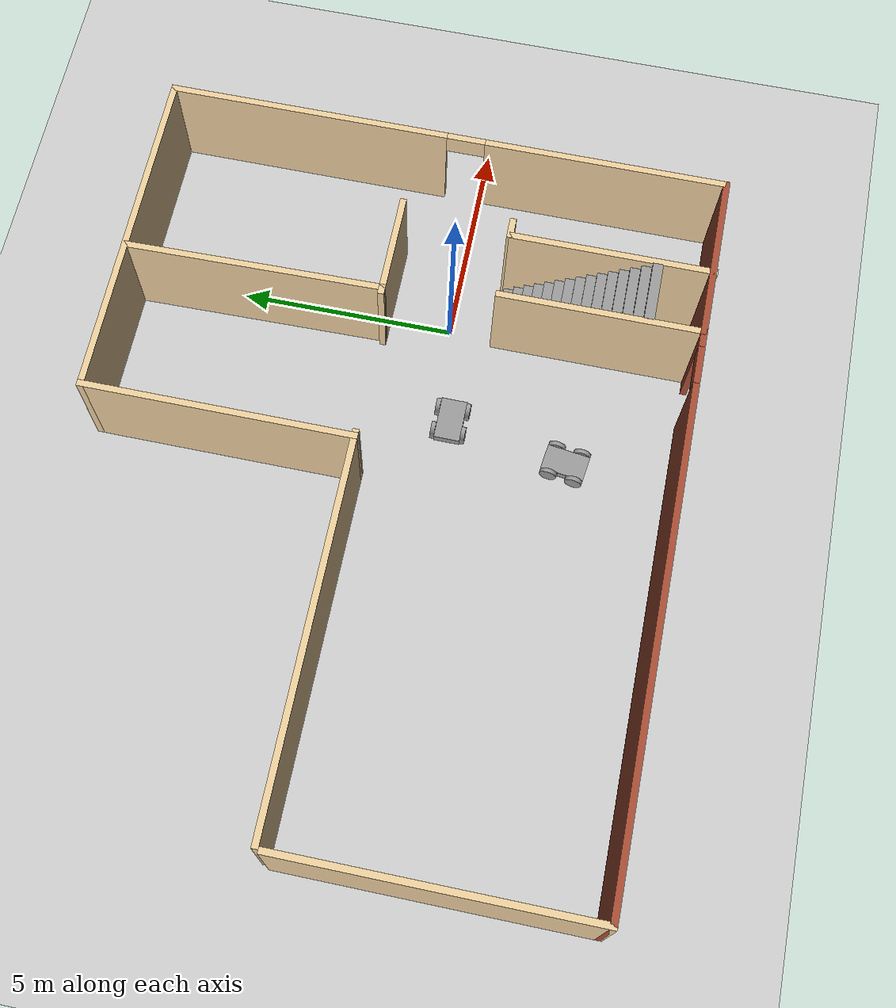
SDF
<sdf version="1.6">
 <world name="default">
  <plugin name="hello" filename="libhello.so"/>
  <light name="sun" type="directional">
   <pose>0 0 10 0 -0 0</pose>
   <diffuse>0.8 0.8 0.8 1</diffuse>
   <specular>0.2 0.2 0.2 1</specular>
   <attenuation>
    <range>1000</range>
    <constant>0.9</constant>
    <linear>0.01</linear>
    <quadratic>0.001</quadratic>
   </attenuation>
   <direction>-0.5 0.1 -0.9</direction>
  </light>
  <model name="ground_plane">
   <static>1</static>
   <link name="link">
    <collision name="collision">
     <geometry><plane><normal>0 0 1</normal><size>100 100</size></plane></geometry>
     <surface>
      <contact><collide_bitmask>65535</collide_bitmask></contact>
      <friction><ode><mu>100</mu><mu2>50</mu2></ode></friction>
     </surface>
    </collision>
    <visual name="visual">
     <cast_shadows>0</cast_shadows>
     <geometry><plane><normal>0 0 1</normal><size>100 100</size></plane></geometry>
     <material>
      <script><uri>file://media/materials/scripts/gazebo.material</uri><name>Gazebo/Grey</name></script>
     </material>
    </visual>
   </link>
  </model>
  <gravity>0 0 -9.8</gravity>
  <magnetic_field>6e-06 2.3e-05 -4.2e-05</magnetic_field>
  <atmosphere type="adiabatic"/>
  <physics name="default_physics" default="0" type="ode">
   <max_step_size>0.001</max_step_size>
   <real_time_factor>1</real_time_factor>
   <real_time_update_rate>1000</real_time_update_rate>
  </physics>
  <scene><ambient>0.4 0.4 0.4 1</ambient><background>0.7 0.7 0.7 1</background><shadows>1</shadows></scene>
  <spherical_coordinates>
   <surface_model>EARTH_WGS84</surface_model>
   <latitude_deg>0</latitude_deg>
   <longitude_deg>0</longitude_deg>
   <elevation>0</elevation>
   <heading_deg>0</heading_deg>
  </spherical_coordinates>
  <model name="robot_1">
   <link name="link_0">
    <light name="spot" type="spot">
     <pose>0.4 0 -0.3 0 -1.5707 0</pose>
     <diffuse>1 1 1 0.5</diffuse>
     <specular>0.1 0.1 0.1 1</specular>
     <attenuation>
      <range>10</range>
      <linear>0.5</linear>
      <constant>0.8</constant>
      <quadratic>0.01</quadratic>
     </attenuation>
     <direction>0 0 -1</direction>
    </light>
    <pose>-0.396955 -1.04287 0.74 0 -0 0</pose>
    <inertial>
     <mass>1</mass>
     <inertia>
      <ixx>0.166667</ixx>
      <ixy>0</ixy>
      <ixz>0</ixz>
      <iyy>0.166667</iyy>
      <iyz>0</iyz>
      <izz>0.166667</izz>
     </inertia>
    </inertial>
    <visual name="visual">
     <pose>0 0 -0.3 0 -0 0</pose>
     <geometry><box><size>1 0.6 0.2</size></box></geometry>
     <material>
      <lighting>1</lighting>
      <script><uri>file://media/materials/scripts/gazebo.material</uri><name>Gazebo/Grey</name></script>
      <shader type="pixel"><normal_map>__default__</normal_map></shader>
      <ambient>0.3 0.3 0.3 1</ambient>
      <diffuse>0.7 0.7 0.7 1</diffuse>
      <specular>0.01 0.01 0.01 1</specular>
      <emissive>0 0 0 1</emissive>
     </material>
    </visual>
    <collision name="collision">
     <pose>0 0 -0.3 0 -0 0</pose>
     <geometry><box><size>1 0.6 0.2</size></box></geometry>
     <surface>
      <friction>
       <ode><mu>1</mu><mu2>1</mu2><fdir1>0 0 0</fdir1><slip1>0</slip1><slip2>0</slip2></ode>
       <torsional>
        <coefficient>1</coefficient>
        <patch_radius>0</patch_radius>
        <surface_radius>0</surface_radius>
        <use_patch_radius>1</use_patch_radius>
        <ode><slip>0</slip></ode>
       </torsional>
      </friction>
      <bounce><restitution_coefficient>0</restitution_coefficient><threshold>1e+06</threshold></bounce>
      <contact>
       <collide_without_contact>0</collide_without_contact>
       <collide_without_contact_bitmask>1</collide_without_contact_bitmask>
       <collide_bitmask>1</collide_bitmask>
       <ode>
        <soft_cfm>0</soft_cfm>
        <soft_erp>0.2</soft_erp>
        <kp>1e+13</kp>
        <kd>1</kd>
        <max_vel>0.01</max_vel>
        <min_depth>0</min_depth>
       </ode>
       <bullet>
        <split_impulse>1</split_impulse>
        <split_impulse_penetration_threshold>-0.01</split_impulse_penetration_threshold>
        <soft_cfm>0</soft_cfm>
        <soft_erp>0.2</soft_erp>
        <kp>1e+13</kp>
        <kd>1</kd>
       </bullet>
      </contact>
     </surface>
    </collision>
   </link>
   <link name="link_1">
    <pose>-0.696955 -1.39289 0.44 1.5707 -0 0</pose>
    <inertial>
     <mass>0.1</mass>
     <inertia><ixx>0.145833</ixx><ixy>0</ixy><ixz>0</ixz><iyy>0.145833</iyy><iyz>0</iyz><izz>0.125</izz></inertia>
    </inertial>
    <visual name="visual">
     <geometry><cylinder><radius>0.2</radius><length>0.1</length></cylinder></geometry>
     <material>
      <lighting>1</lighting>
      <script><uri>file://media/materials/scripts/gazebo.material</uri><name>Gazebo/Grey</name></script>
      <shader type="pixel"><normal_map>__default__</normal_map></shader>
      <ambient>0.3 0.3 0.3 1</ambient>
      <diffuse>0.7 0.7 0.7 1</diffuse>
      <specular>0.01 0.01 0.01 1</specular>
      <emissive>0 0 0 1</emissive>
     </material>
    </visual>
    <collision name="collision">
     <geometry><cylinder><radius>0.2</radius><length>0.1</length></cylinder></geometry>
     <surface>
      <friction>
       <ode><mu>1</mu><mu2>1</mu2><fdir1>0 0 0</fdir1><slip1>0</slip1><slip2>0</slip2></ode>
       <torsional>
        <coefficient>1</coefficient>
        <patch_radius>0</patch_radius>
        <surface_radius>0</surface_radius>
        <use_patch_radius>1</use_patch_radius>
        <ode><slip>0</slip></ode>
       </torsional>
      </friction>
      <bounce><restitution_coefficient>0</restitution_coefficient><threshold>1e+06</threshold></bounce>
      <contact>
       <collide_without_contact>0</collide_without_contact>
       <collide_without_contact_bitmask>1</collide_without_contact_bitmask>
       <collide_bitmask>1</collide_bitmask>
       <ode>
        <soft_cfm>0</soft_cfm>
        <soft_erp>0.2</soft_erp>
        <kp>1e+13</kp>
        <kd>1</kd>
        <max_vel>0.01</max_vel>
        <min_depth>0</min_depth>
       </ode>
       <bullet>
        <split_impulse>1</split_impulse>
        <split_impulse_penetration_threshold>-0.01</split_impulse_penetration_threshold>
        <soft_cfm>0</soft_cfm>
        <soft_erp>0.2</soft_erp>
        <kp>1e+13</kp>
        <kd>1</kd>
       </bullet>
      </contact>
     </surface>
    </collision>
   </link>
   <link name="link_1_clone">
    <pose>-0.096955 -1.39289 0.44 1.5707 -0 0</pose>
    <inertial>
     <mass>0.1</mass>
     <inertia><ixx>0.145833</ixx><ixy>0</ixy><ixz>0</ixz><iyy>0.145833</iyy><iyz>0</iyz><izz>0.125</izz></inertia>
    </inertial>
    <visual name="visual">
     <geometry><cylinder><radius>0.2</radius><length>0.1</length></cylinder></geometry>
     <material>
      <lighting>1</lighting>
      <script><uri>file://media/materials/scripts/gazebo.material</uri><name>Gazebo/Grey</name></script>
      <shader type="pixel"><normal_map>__default__</normal_map></shader>
      <ambient>0.3 0.3 0.3 1</ambient>
      <diffuse>0.7 0.7 0.7 1</diffuse>
      <specular>0.01 0.01 0.01 1</specular>
      <emissive>0 0 0 1</emissive>
     </material>
    </visual>
    <collision name="collision">
     <geometry><cylinder><radius>0.2</radius><length>0.1</length></cylinder></geometry>
     <surface>
      <friction>
       <ode><mu>1</mu><mu2>1</mu2><fdir1>0 0 0</fdir1><slip1>0</slip1><slip2>0</slip2></ode>
       <torsional>
        <coefficient>1</coefficient>
        <patch_radius>0</patch_radius>
        <surface_radius>0</surface_radius>
        <use_patch_radius>1</use_patch_radius>
        <ode><slip>0</slip></ode>
       </torsional>
      </friction>
      <bounce><restitution_coefficient>0</restitution_coefficient><threshold>1e+06</threshold></bounce>
      <contact>
       <collide_without_contact>0</collide_without_contact>
       <collide_without_contact_bitmask>1</collide_without_contact_bitmask>
       <collide_bitmask>1</collide_bitmask>
       <ode>
        <soft_cfm>0</soft_cfm>
        <soft_erp>0.2</soft_erp>
        <kp>1e+13</kp>
        <kd>1</kd>
        <max_vel>0.01</max_vel>
        <min_depth>0</min_depth>
       </ode>
       <bullet>
        <split_impulse>1</split_impulse>
        <split_impulse_penetration_threshold>-0.01</split_impulse_penetration_threshold>
        <soft_cfm>0</soft_cfm>
        <soft_erp>0.2</soft_erp>
        <kp>1e+13</kp>
        <kd>1</kd>
       </bullet>
      </contact>
     </surface>
    </collision>
   </link>
   <link name="link_1_clone_0">
    <pose>-0.096955 -0.692851 0.44 1.5707 -0 0</pose>
    <inertial>
     <mass>0.1</mass>
     <inertia><ixx>0.145833</ixx><ixy>0</ixy><ixz>0</ixz><iyy>0.145833</iyy><iyz>0</iyz><izz>0.125</izz></inertia>
    </inertial>
    <visual name="visual">
     <geometry><cylinder><radius>0.2</radius><length>0.1</length></cylinder></geometry>
     <material>
      <lighting>1</lighting>
      <script><uri>file://media/materials/scripts/gazebo.material</uri><name>Gazebo/Grey</name></script>
      <shader type="pixel"><normal_map>__default__</normal_map></shader>
      <ambient>0.3 0.3 0.3 1</ambient>
      <diffuse>0.7 0.7 0.7 1</diffuse>
      <specular>0.01 0.01 0.01 1</specular>
      <emissive>0 0 0 1</emissive>
     </material>
    </visual>
    <collision name="collision">
     <geometry><cylinder><radius>0.2</radius><length>0.1</length></cylinder></geometry>
     <surface>
      <friction>
       <ode><mu>1</mu><mu2>1</mu2><fdir1>0 0 0</fdir1><slip1>0</slip1><slip2>0</slip2></ode>
       <torsional>
        <coefficient>1</coefficient>
        <patch_radius>0</patch_radius>
        <surface_radius>0</surface_radius>
        <use_patch_radius>1</use_patch_radius>
        <ode><slip>0</slip></ode>
       </torsional>
      </friction>
      <bounce><restitution_coefficient>0</restitution_coefficient><threshold>1e+06</threshold></bounce>
      <contact>
       <collide_without_contact>0</collide_without_contact>
       <collide_without_contact_bitmask>1</collide_without_contact_bitmask>
       <collide_bitmask>1</collide_bitmask>
       <ode>
        <soft_cfm>0</soft_cfm>
        <soft_erp>0.2</soft_erp>
        <kp>1e+13</kp>
        <kd>1</kd>
        <max_vel>0.01</max_vel>
        <min_depth>0</min_depth>
       </ode>
       <bullet>
        <split_impulse>1</split_impulse>
        <split_impulse_penetration_threshold>-0.01</split_impulse_penetration_threshold>
        <soft_cfm>0</soft_cfm>
        <soft_erp>0.2</soft_erp>
        <kp>1e+13</kp>
        <kd>1</kd>
       </bullet>
      </contact>
     </surface>
    </collision>
   </link>
   <link name="link_1_clone_1">
    <pose>-0.696955 -0.692851 0.44 1.5707 -0 0</pose>
    <inertial>
     <mass>0.1</mass>
     <inertia><ixx>0.145833</ixx><ixy>0</ixy><ixz>0</ixz><iyy>0.145833</iyy><iyz>0</iyz><izz>0.125</izz></inertia>
    </inertial>
    <visual name="visual">
     <geometry><cylinder><radius>0.2</radius><length>0.1</length></cylinder></geometry>
     <material>
      <lighting>1</lighting>
      <script><uri>file://media/materials/scripts/gazebo.material</uri><name>Gazebo/Grey</name></script>
      <shader type="pixel"><normal_map>__default__</normal_map></shader>
      <ambient>0.3 0.3 0.3 1</ambient>
      <diffuse>0.7 0.7 0.7 1</diffuse>
      <specular>0.01 0.01 0.01 1</specular>
      <emissive>0 0 0 1</emissive>
     </material>
    </visual>
    <collision name="collision">
     <geometry><cylinder><radius>0.2</radius><length>0.1</length></cylinder></geometry>
     <surface>
      <friction>
       <ode><mu>1</mu><mu2>1</mu2><fdir1>0 0 0</fdir1><slip1>0</slip1><slip2>0</slip2></ode>
       <torsional>
        <coefficient>1</coefficient>
        <patch_radius>0</patch_radius>
        <surface_radius>0</surface_radius>
        <use_patch_radius>1</use_patch_radius>
        <ode><slip>0</slip></ode>
       </torsional>
      </friction>
      <bounce><restitution_coefficient>0</restitution_coefficient><threshold>1e+06</threshold></bounce>
      <contact>
       <collide_without_contact>0</collide_without_contact>
       <collide_without_contact_bitmask>1</collide_without_contact_bitmask>
       <collide_bitmask>1</collide_bitmask>
       <ode>
        <soft_cfm>0</soft_cfm>
        <soft_erp>0.2</soft_erp>
        <kp>1e+13</kp>
        <kd>1</kd>
        <max_vel>0.01</max_vel>
        <min_depth>0</min_depth>
       </ode>
       <bullet>
        <split_impulse>1</split_impulse>
        <split_impulse_penetration_threshold>-0.01</split_impulse_penetration_threshold>
        <soft_cfm>0</soft_cfm>
        <soft_erp>0.2</soft_erp>
        <kp>1e+13</kp>
        <kd>1</kd>
       </bullet>
      </contact>
     </surface>
    </collision>
   </link>
   <joint name="link_0_JOINT_0" type="revolute">
    <parent>link_0</parent>
    <child>link_1</child>
    <axis>
     <xyz>0 0 1</xyz>
     <use_parent_model_frame>0</use_parent_model_frame>
     <limit>
      <lower>-1.79769e+308</lower>
      <upper>1.79769e+308</upper>
      <effort>-1</effort>
      <velocity>-1</velocity>
     </limit>
     <dynamics>
      <spring_reference>0</spring_reference>
      <spring_stiffness>0</spring_stiffness>
      <damping>0</damping>
     </dynamics>
    </axis>
    <physics>
     <ode><limit><cfm>0</cfm><erp>0.2</erp></limit><suspension><cfm>0</cfm><erp>0.2</erp></suspension></ode>
    </physics>
   </joint>
   <joint name="link_0_JOINT_1" type="revolute">
    <parent>link_0</parent>
    <child>link_1_clone</child>
    <axis>
     <xyz>0 0 1</xyz>
     <use_parent_model_frame>0</use_parent_model_frame>
     <limit>
      <lower>-1.79769e+308</lower>
      <upper>1.79769e+308</upper>
      <effort>-1</effort>
      <velocity>-1</velocity>
     </limit>
     <dynamics>
      <spring_reference>0</spring_reference>
      <spring_stiffness>0</spring_stiffness>
      <damping>0</damping>
     </dynamics>
    </axis>
    <physics>
     <ode><limit><cfm>0</cfm><erp>0.2</erp></limit><suspension><cfm>0</cfm><erp>0.2</erp></suspension></ode>
    </physics>
   </joint>
   <joint name="link_0_JOINT_2" type="revolute">
    <parent>link_0</parent>
    <child>link_1_clone_1</child>
    <axis>
     <xyz>0 0 1</xyz>
     <use_parent_model_frame>0</use_parent_model_frame>
     <limit>
      <lower>-1.79769e+308</lower>
      <upper>1.79769e+308</upper>
      <effort>-1</effort>
      <velocity>-1</velocity>
     </limit>
     <dynamics>
      <spring_reference>0</spring_reference>
      <spring_stiffness>0</spring_stiffness>
      <damping>0</damping>
     </dynamics>
    </axis>
    <physics>
     <ode><limit><cfm>0</cfm><erp>0.2</erp></limit><suspension><cfm>0</cfm><erp>0.2</erp></suspension></ode>
    </physics>
   </joint>
   <joint name="link_0_JOINT_3" type="revolute">
    <parent>link_0</parent>
    <child>link_1_clone_0</child>
    <axis>
     <xyz>0 0 1</xyz>
     <use_parent_model_frame>0</use_parent_model_frame>
     <limit>
      <lower>-1.79769e+308</lower>
      <upper>1.79769e+308</upper>
      <effort>-1</effort>
      <velocity>-1</velocity>
     </limit>
     <dynamics>
      <spring_reference>0</spring_reference>
      <spring_stiffness>0</spring_stiffness>
      <damping>0</damping>
     </dynamics>
    </axis>
    <physics>
     <ode><limit><cfm>0</cfm><erp>0.2</erp></limit><suspension><cfm>0</cfm><erp>0.2</erp></suspension></ode>
    </physics>
   </joint>
   <static>0</static>
   <pose>-1.91993 0.576379 -0.239994 1e-06 -1e-06 -0.002204</pose>
  </model>
  <model name="robot_2">
   <link name="link_0">
    <light name="spot" type="spot">
     <pose>0.4 0 -0.3 0 -1.5707 0</pose>
     <diffuse>1 1 1 0.5</diffuse>
     <specular>0.1 0.1 0.1 1</specular>
     <attenuation>
      <range>10</range>
      <linear>0.5</linear>
      <constant>0.8</constant>
      <quadratic>0.01</quadratic>
     </attenuation>
     <direction>0 0 -1</direction>
    </light>
    <pose>-0.396955 -1.04287 0.74 0 -0 0</pose>
    <inertial>
     <mass>1</mass>
     <inertia>
      <ixx>0.166667</ixx>
      <ixy>0</ixy>
      <ixz>0</ixz>
      <iyy>0.166667</iyy>
      <iyz>0</iyz>
      <izz>0.166667</izz>
     </inertia>
    </inertial>
    <visual name="visual">
     <pose>0 0 -0.3 0 -0 0</pose>
     <geometry><box><size>1 0.6 0.2</size></box></geometry>
     <material>
      <lighting>1</lighting>
      <script><uri>file://media/materials/scripts/gazebo.material</uri><name>Gazebo/Grey</name></script>
      <shader type="pixel"><normal_map>__default__</normal_map></shader>
      <ambient>0.3 0.3 0.3 1</ambient>
      <diffuse>0.7 0.7 0.7 1</diffuse>
      <specular>0.01 0.01 0.01 1</specular>
      <emissive>0 0 0 1</emissive>
     </material>
    </visual>
    <collision name="collision">
     <pose>0 0 -0.3 0 -0 0</pose>
     <geometry><box><size>1 0.6 0.2</size></box></geometry>
     <surface>
      <friction>
       <ode><mu>1</mu><mu2>1</mu2><fdir1>0 0 0</fdir1><slip1>0</slip1><slip2>0</slip2></ode>
       <torsional>
        <coefficient>1</coefficient>
        <patch_radius>0</patch_radius>
        <surface_radius>0</surface_radius>
        <use_patch_radius>1</use_patch_radius>
        <ode><slip>0</slip></ode>
       </torsional>
      </friction>
      <bounce><restitution_coefficient>0</restitution_coefficient><threshold>1e+06</threshold></bounce>
      <contact>
       <collide_without_contact>0</collide_without_contact>
       <collide_without_contact_bitmask>1</collide_without_contact_bitmask>
       <collide_bitmask>1</collide_bitmask>
       <ode>
        <soft_cfm>0</soft_cfm>
        <soft_erp>0.2</soft_erp>
        <kp>1e+13</kp>
        <kd>1</kd>
        <max_vel>0.01</max_vel>
        <min_depth>0</min_depth>
       </ode>
       <bullet>
        <split_impulse>1</split_impulse>
        <split_impulse_penetration_threshold>-0.01</split_impulse_penetration_threshold>
        <soft_cfm>0</soft_cfm>
        <soft_erp>0.2</soft_erp>
        <kp>1e+13</kp>
        <kd>1</kd>
       </bullet>
      </contact>
     </surface>
    </collision>
   </link>
   <link name="link_1">
    <pose>-0.696955 -1.39289 0.44 1.5707 -0 0</pose>
    <inertial>
     <mass>0.1</mass>
     <inertia><ixx>0.145833</ixx><ixy>0</ixy><ixz>0</ixz><iyy>0.145833</iyy><iyz>0</iyz><izz>0.125</izz></inertia>
    </inertial>
    <visual name="visual">
     <geometry><cylinder><radius>0.2</radius><length>0.1</length></cylinder></geometry>
     <material>
      <lighting>1</lighting>
      <script><uri>file://media/materials/scripts/gazebo.material</uri><name>Gazebo/Grey</name></script>
      <shader type="pixel"><normal_map>__default__</normal_map></shader>
      <ambient>0.3 0.3 0.3 1</ambient>
      <diffuse>0.7 0.7 0.7 1</diffuse>
      <specular>0.01 0.01 0.01 1</specular>
      <emissive>0 0 0 1</emissive>
     </material>
    </visual>
    <collision name="collision">
     <geometry><cylinder><radius>0.2</radius><length>0.1</length></cylinder></geometry>
     <surface>
      <friction>
       <ode><mu>1</mu><mu2>1</mu2><fdir1>0 0 0</fdir1><slip1>0</slip1><slip2>0</slip2></ode>
       <torsional>
        <coefficient>1</coefficient>
        <patch_radius>0</patch_radius>
        <surface_radius>0</surface_radius>
        <use_patch_radius>1</use_patch_radius>
        <ode><slip>0</slip></ode>
       </torsional>
      </friction>
      <bounce><restitution_coefficient>0</restitution_coefficient><threshold>1e+06</threshold></bounce>
      <contact>
       <collide_without_contact>0</collide_without_contact>
       <collide_without_contact_bitmask>1</collide_without_contact_bitmask>
       <collide_bitmask>1</collide_bitmask>
       <ode>
        <soft_cfm>0</soft_cfm>
        <soft_erp>0.2</soft_erp>
        <kp>1e+13</kp>
        <kd>1</kd>
        <max_vel>0.01</max_vel>
        <min_depth>0</min_depth>
       </ode>
       <bullet>
        <split_impulse>1</split_impulse>
        <split_impulse_penetration_threshold>-0.01</split_impulse_penetration_threshold>
        <soft_cfm>0</soft_cfm>
        <soft_erp>0.2</soft_erp>
        <kp>1e+13</kp>
        <kd>1</kd>
       </bullet>
      </contact>
     </surface>
    </collision>
   </link>
   <link name="link_1_clone">
    <pose>-0.096955 -1.39289 0.44 1.5707 -0 0</pose>
    <inertial>
     <mass>0.1</mass>
     <inertia><ixx>0.145833</ixx><ixy>0</ixy><ixz>0</ixz><iyy>0.145833</iyy><iyz>0</iyz><izz>0.125</izz></inertia>
    </inertial>
    <visual name="visual">
     <geometry><cylinder><radius>0.2</radius><length>0.1</length></cylinder></geometry>
     <material>
      <lighting>1</lighting>
      <script><uri>file://media/materials/scripts/gazebo.material</uri><name>Gazebo/Grey</name></script>
      <shader type="pixel"><normal_map>__default__</normal_map></shader>
      <ambient>0.3 0.3 0.3 1</ambient>
      <diffuse>0.7 0.7 0.7 1</diffuse>
      <specular>0.01 0.01 0.01 1</specular>
      <emissive>0 0 0 1</emissive>
     </material>
    </visual>
    <collision name="collision">
     <geometry><cylinder><radius>0.2</radius><length>0.1</length></cylinder></geometry>
     <surface>
      <friction>
       <ode><mu>1</mu><mu2>1</mu2><fdir1>0 0 0</fdir1><slip1>0</slip1><slip2>0</slip2></ode>
       <torsional>
        <coefficient>1</coefficient>
        <patch_radius>0</patch_radius>
        <surface_radius>0</surface_radius>
        <use_patch_radius>1</use_patch_radius>
        <ode><slip>0</slip></ode>
       </torsional>
      </friction>
      <bounce><restitution_coefficient>0</restitution_coefficient><threshold>1e+06</threshold></bounce>
      <contact>
       <collide_without_contact>0</collide_without_contact>
       <collide_without_contact_bitmask>1</collide_without_contact_bitmask>
       <collide_bitmask>1</collide_bitmask>
       <ode>
        <soft_cfm>0</soft_cfm>
        <soft_erp>0.2</soft_erp>
        <kp>1e+13</kp>
        <kd>1</kd>
        <max_vel>0.01</max_vel>
        <min_depth>0</min_depth>
       </ode>
       <bullet>
        <split_impulse>1</split_impulse>
        <split_impulse_penetration_threshold>-0.01</split_impulse_penetration_threshold>
        <soft_cfm>0</soft_cfm>
        <soft_erp>0.2</soft_erp>
        <kp>1e+13</kp>
        <kd>1</kd>
       </bullet>
      </contact>
     </surface>
    </collision>
   </link>
   <link name="link_1_clone_0">
    <pose>-0.096955 -0.692851 0.44 1.5707 -0 0</pose>
    <inertial>
     <mass>0.1</mass>
     <inertia><ixx>0.145833</ixx><ixy>0</ixy><ixz>0</ixz><iyy>0.145833</iyy><iyz>0</iyz><izz>0.125</izz></inertia>
    </inertial>
    <visual name="visual">
     <geometry><cylinder><radius>0.2</radius><length>0.1</length></cylinder></geometry>
     <material>
      <lighting>1</lighting>
      <script><uri>file://media/materials/scripts/gazebo.material</uri><name>Gazebo/Grey</name></script>
      <shader type="pixel"><normal_map>__default__</normal_map></shader>
      <ambient>0.3 0.3 0.3 1</ambient>
      <diffuse>0.7 0.7 0.7 1</diffuse>
      <specular>0.01 0.01 0.01 1</specular>
      <emissive>0 0 0 1</emissive>
     </material>
    </visual>
    <collision name="collision">
     <geometry><cylinder><radius>0.2</radius><length>0.1</length></cylinder></geometry>
     <surface>
      <friction>
       <ode><mu>1</mu><mu2>1</mu2><fdir1>0 0 0</fdir1><slip1>0</slip1><slip2>0</slip2></ode>
       <torsional>
        <coefficient>1</coefficient>
        <patch_radius>0</patch_radius>
        <surface_radius>0</surface_radius>
        <use_patch_radius>1</use_patch_radius>
        <ode><slip>0</slip></ode>
       </torsional>
      </friction>
      <bounce><restitution_coefficient>0</restitution_coefficient><threshold>1e+06</threshold></bounce>
      <contact>
       <collide_without_contact>0</collide_without_contact>
       <collide_without_contact_bitmask>1</collide_without_contact_bitmask>
       <collide_bitmask>1</collide_bitmask>
       <ode>
        <soft_cfm>0</soft_cfm>
        <soft_erp>0.2</soft_erp>
        <kp>1e+13</kp>
        <kd>1</kd>
        <max_vel>0.01</max_vel>
        <min_depth>0</min_depth>
       </ode>
       <bullet>
        <split_impulse>1</split_impulse>
        <split_impulse_penetration_threshold>-0.01</split_impulse_penetration_threshold>
        <soft_cfm>0</soft_cfm>
        <soft_erp>0.2</soft_erp>
        <kp>1e+13</kp>
        <kd>1</kd>
       </bullet>
      </contact>
     </surface>
    </collision>
   </link>
   <link name="link_1_clone_1">
    <pose>-0.696955 -0.692851 0.44 1.5707 -0 0</pose>
    <inertial>
     <mass>0.1</mass>
     <inertia><ixx>0.145833</ixx><ixy>0</ixy><ixz>0</ixz><iyy>0.145833</iyy><iyz>0</iyz><izz>0.125</izz></inertia>
    </inertial>
    <visual name="visual">
     <geometry><cylinder><radius>0.2</radius><length>0.1</length></cylinder></geometry>
     <material>
      <lighting>1</lighting>
      <script><uri>file://media/materials/scripts/gazebo.material</uri><name>Gazebo/Grey</name></script>
      <shader type="pixel"><normal_map>__default__</normal_map></shader>
      <ambient>0.3 0.3 0.3 1</ambient>
      <diffuse>0.7 0.7 0.7 1</diffuse>
      <specular>0.01 0.01 0.01 1</specular>
      <emissive>0 0 0 1</emissive>
     </material>
    </visual>
    <collision name="collision">
     <geometry><cylinder><radius>0.2</radius><length>0.1</length></cylinder></geometry>
     <surface>
      <friction>
       <ode><mu>1</mu><mu2>1</mu2><fdir1>0 0 0</fdir1><slip1>0</slip1><slip2>0</slip2></ode>
       <torsional>
        <coefficient>1</coefficient>
        <patch_radius>0</patch_radius>
        <surface_radius>0</surface_radius>
        <use_patch_radius>1</use_patch_radius>
        <ode><slip>0</slip></ode>
       </torsional>
      </friction>
      <bounce><restitution_coefficient>0</restitution_coefficient><threshold>1e+06</threshold></bounce>
      <contact>
       <collide_without_contact>0</collide_without_contact>
       <collide_without_contact_bitmask>1</collide_without_contact_bitmask>
       <collide_bitmask>1</collide_bitmask>
       <ode>
        <soft_cfm>0</soft_cfm>
        <soft_erp>0.2</soft_erp>
        <kp>1e+13</kp>
        <kd>1</kd>
        <max_vel>0.01</max_vel>
        <min_depth>0</min_depth>
       </ode>
       <bullet>
        <split_impulse>1</split_impulse>
        <split_impulse_penetration_threshold>-0.01</split_impulse_penetration_threshold>
        <soft_cfm>0</soft_cfm>
        <soft_erp>0.2</soft_erp>
        <kp>1e+13</kp>
        <kd>1</kd>
       </bullet>
      </contact>
     </surface>
    </collision>
   </link>
   <joint name="link_0_JOINT_0" type="revolute">
    <parent>link_0</parent>
    <child>link_1</child>
    <axis>
     <xyz>0 0 1</xyz>
     <use_parent_model_frame>0</use_parent_model_frame>
     <limit>
      <lower>-1.79769e+308</lower>
      <upper>1.79769e+308</upper>
      <effort>-1</effort>
      <velocity>-1</velocity>
     </limit>
     <dynamics>
      <spring_reference>0</spring_reference>
      <spring_stiffness>0</spring_stiffness>
      <damping>0</damping>
     </dynamics>
    </axis>
    <physics>
     <ode><limit><cfm>0</cfm><erp>0.2</erp></limit><suspension><cfm>0</cfm><erp>0.2</erp></suspension></ode>
    </physics>
   </joint>
   <joint name="link_0_JOINT_1" type="revolute">
    <parent>link_0</parent>
    <child>link_1_clone</child>
    <axis>
     <xyz>0 0 1</xyz>
     <use_parent_model_frame>0</use_parent_model_frame>
     <limit>
      <lower>-1.79769e+308</lower>
      <upper>1.79769e+308</upper>
      <effort>-1</effort>
      <velocity>-1</velocity>
     </limit>
     <dynamics>
      <spring_reference>0</spring_reference>
      <spring_stiffness>0</spring_stiffness>
      <damping>0</damping>
     </dynamics>
    </axis>
    <physics>
     <ode><limit><cfm>0</cfm><erp>0.2</erp></limit><suspension><cfm>0</cfm><erp>0.2</erp></suspension></ode>
    </physics>
   </joint>
   <joint name="link_0_JOINT_2" type="revolute">
    <parent>link_0</parent>
    <child>link_1_clone_1</child>
    <axis>
     <xyz>0 0 1</xyz>
     <use_parent_model_frame>0</use_parent_model_frame>
     <limit>
      <lower>-1.79769e+308</lower>
      <upper>1.79769e+308</upper>
      <effort>-1</effort>
      <velocity>-1</velocity>
     </limit>
     <dynamics>
      <spring_reference>0</spring_reference>
      <spring_stiffness>0</spring_stiffness>
      <damping>0</damping>
     </dynamics>
    </axis>
    <physics>
     <ode><limit><cfm>0</cfm><erp>0.2</erp></limit><suspension><cfm>0</cfm><erp>0.2</erp></suspension></ode>
    </physics>
   </joint>
   <joint name="link_0_JOINT_3" type="revolute">
    <parent>link_0</parent>
    <child>link_1_clone_0</child>
    <axis>
     <xyz>0 0 1</xyz>
     <use_parent_model_frame>0</use_parent_model_frame>
     <limit>
      <lower>-1.79769e+308</lower>
      <upper>1.79769e+308</upper>
      <effort>-1</effort>
      <velocity>-1</velocity>
     </limit>
     <dynamics>
      <spring_reference>0</spring_reference>
      <spring_stiffness>0</spring_stiffness>
      <damping>0</damping>
     </dynamics>
    </axis>
    <physics>
     <ode><limit><cfm>0</cfm><erp>0.2</erp></limit><suspension><cfm>0</cfm><erp>0.2</erp></suspension></ode>
    </physics>
   </joint>
   <static>0</static>
   <pose>-3.82705 -2.71423 -0.24 0 7e-06 1.44065</pose>
  </model>
  <model name="lounge">
   <pose>-4.57476 0.874127 0 0 -0 0</pose>
   <link name="Stairs_0">
    <visual name="Stairs_0_Visual_0">
     <pose>5.26794 -2.03684 0.083333 0 -0 0</pose>
     <geometry><box><size>1.41269 0.233333 0.166667</size></box></geometry>
     <material>
      <script><uri>file://media/materials/scripts/gazebo.material</uri><name>Gazebo/Grey</name></script>
      <ambient>1 1 1 1</ambient>
     </material>
     <meta><layer>0</layer></meta>
    </visual>
    <collision name="Stairs_0_Collision_0">
     <geometry><box><size>1.41269 0.233333 0.166667</size></box></geometry>
     <pose>5.26794 -2.03684 0.083333 0 -0 0</pose>
    </collision>
    <visual name="Stairs_0_Visual_1">
     <pose>5.26794 -2.27017 0.25 0 -0 0</pose>
     <geometry><box><size>1.41269 0.233333 0.166667</size></box></geometry>
     <material>
      <script><uri>file://media/materials/scripts/gazebo.material</uri><name>Gazebo/Grey</name></script>
      <ambient>1 1 1 1</ambient>
     </material>
     <meta><layer>0</layer></meta>
    </visual>
    <collision name="Stairs_0_Collision_1">
     <geometry><box><size>1.41269 0.233333 0.166667</size></box></geometry>
     <pose>5.26794 -2.27017 0.25 0 -0 0</pose>
    </collision>
    <visual name="Stairs_0_Visual_2">
     <pose>5.26794 -2.50351 0.416667 0 -0 0</pose>
     <geometry><box><size>1.41269 0.233333 0.166667</size></box></geometry>
     <material>
      <script><uri>file://media/materials/scripts/gazebo.material</uri><name>Gazebo/Grey</name></script>
      <ambient>1 1 1 1</ambient>
     </material>
     <meta><layer>0</layer></meta>
    </visual>
    <collision name="Stairs_0_Collision_2">
     <geometry><box><size>1.41269 0.233333 0.166667</size></box></geometry>
     <pose>5.26794 -2.50351 0.416667 0 -0 0</pose>
    </collision>
    <visual name="Stairs_0_Visual_3">
     <pose>5.26794 -2.73684 0.583333 0 -0 0</pose>
     <geometry><box><size>1.41269 0.233333 0.166667</size></box></geometry>
     <material>
      <script><uri>file://media/materials/scripts/gazebo.material</uri><name>Gazebo/Grey</name></script>
      <ambient>1 1 1 1</ambient>
     </material>
     <meta><layer>0</layer></meta>
    </visual>
    <collision name="Stairs_0_Collision_3">
     <geometry><box><size>1.41269 0.233333 0.166667</size></box></geometry>
     <pose>5.26794 -2.73684 0.583333 0 -0 0</pose>
    </collision>
    <visual name="Stairs_0_Visual_4">
     <pose>5.26794 -2.97017 0.75 0 -0 0</pose>
     <geometry><box><size>1.41269 0.233333 0.166667</size></box></geometry>
     <material>
      <script><uri>file://media/materials/scripts/gazebo.material</uri><name>Gazebo/Grey</name></script>
      <ambient>1 1 1 1</ambient>
     </material>
     <meta><layer>0</layer></meta>
    </visual>
    <collision name="Stairs_0_Collision_4">
     <geometry><box><size>1.41269 0.233333 0.166667</size></box></geometry>
     <pose>5.26794 -2.97017 0.75 0 -0 0</pose>
    </collision>
    <visual name="Stairs_0_Visual_5">
     <pose>5.26794 -3.2035 0.916667 0 -0 0</pose>
     <geometry><box><size>1.41269 0.233333 0.166667</size></box></geometry>
     <material>
      <script><uri>file://media/materials/scripts/gazebo.material</uri><name>Gazebo/Grey</name></script>
      <ambient>1 1 1 1</ambient>
     </material>
     <meta><layer>0</layer></meta>
    </visual>
    <collision name="Stairs_0_Collision_5">
     <geometry><box><size>1.41269 0.233333 0.166667</size></box></geometry>
     <pose>5.26794 -3.2035 0.916667 0 -0 0</pose>
    </collision>
    <visual name="Stairs_0_Visual_6">
     <pose>5.26794 -3.43684 1.08333 0 -0 0</pose>
     <geometry><box><size>1.41269 0.233333 0.166667</size></box></geometry>
     <material>
      <script><uri>file://media/materials/scripts/gazebo.material</uri><name>Gazebo/Grey</name></script>
      <ambient>1 1 1 1</ambient>
     </material>
     <meta><layer>0</layer></meta>
    </visual>
    <collision name="Stairs_0_Collision_6">
     <geometry><box><size>1.41269 0.233333 0.166667</size></box></geometry>
     <pose>5.26794 -3.43684 1.08333 0 -0 0</pose>
    </collision>
    <visual name="Stairs_0_Visual_7">
     <pose>5.26794 -3.67017 1.25 0 -0 0</pose>
     <geometry><box><size>1.41269 0.233333 0.166667</size></box></geometry>
     <material>
      <script><uri>file://media/materials/scripts/gazebo.material</uri><name>Gazebo/Grey</name></script>
      <ambient>1 1 1 1</ambient>
     </material>
     <meta><layer>0</layer></meta>
    </visual>
    <collision name="Stairs_0_Collision_7">
     <geometry><box><size>1.41269 0.233333 0.166667</size></box></geometry>
     <pose>5.26794 -3.67017 1.25 0 -0 0</pose>
    </collision>
    <visual name="Stairs_0_Visual_8">
     <pose>5.26794 -3.90351 1.41667 0 -0 0</pose>
     <geometry><box><size>1.41269 0.233333 0.166667</size></box></geometry>
     <material>
      <script><uri>file://media/materials/scripts/gazebo.material</uri><name>Gazebo/Grey</name></script>
      <ambient>1 1 1 1</ambient>
     </material>
     <meta><layer>0</layer></meta>
    </visual>
    <collision name="Stairs_0_Collision_8">
     <geometry><box><size>1.41269 0.233333 0.166667</size></box></geometry>
     <pose>5.26794 -3.90351 1.41667 0 -0 0</pose>
    </collision>
    <visual name="Stairs_0_Visual_9">
     <pose>5.26794 -4.13684 1.58333 0 -0 0</pose>
     <geometry><box><size>1.41269 0.233333 0.166667</size></box></geometry>
     <material>
      <script><uri>file://media/materials/scripts/gazebo.material</uri><name>Gazebo/Grey</name></script>
      <ambient>1 1 1 1</ambient>
     </material>
     <meta><layer>0</layer></meta>
    </visual>
    <collision name="Stairs_0_Collision_9">
     <geometry><box><size>1.41269 0.233333 0.166667</size></box></geometry>
     <pose>5.26794 -4.13684 1.58333 0 -0 0</pose>
    </collision>
    <visual name="Stairs_0_Visual_10">
     <pose>5.26794 -4.37017 1.75 0 -0 0</pose>
     <geometry><box><size>1.41269 0.233333 0.166667</size></box></geometry>
     <material>
      <script><uri>file://media/materials/scripts/gazebo.material</uri><name>Gazebo/Grey</name></script>
      <ambient>1 1 1 1</ambient>
     </material>
     <meta><layer>0</layer></meta>
    </visual>
    <collision name="Stairs_0_Collision_10">
     <geometry><box><size>1.41269 0.233333 0.166667</size></box></geometry>
     <pose>5.26794 -4.37017 1.75 0 -0 0</pose>
    </collision>
    <visual name="Stairs_0_Visual_11">
     <pose>5.26794 -4.60351 1.91667 0 -0 0</pose>
     <geometry><box><size>1.41269 0.233333 0.166667</size></box></geometry>
     <material>
      <script><uri>file://media/materials/scripts/gazebo.material</uri><name>Gazebo/Grey</name></script>
      <ambient>1 1 1 1</ambient>
     </material>
     <meta><layer>0</layer></meta>
    </visual>
    <collision name="Stairs_0_Collision_11">
     <geometry><box><size>1.41269 0.233333 0.166667</size></box></geometry>
     <pose>5.26794 -4.60351 1.91667 0 -0 0</pose>
    </collision>
    <visual name="Stairs_0_Visual_12">
     <pose>5.26794 -4.83684 2.08333 0 -0 0</pose>
     <geometry><box><size>1.41269 0.233333 0.166667</size></box></geometry>
     <material>
      <script><uri>file://media/materials/scripts/gazebo.material</uri><name>Gazebo/Grey</name></script>
      <ambient>1 1 1 1</ambient>
     </material>
     <meta><layer>0</layer></meta>
    </visual>
    <collision name="Stairs_0_Collision_12">
     <geometry><box><size>1.41269 0.233333 0.166667</size></box></geometry>
     <pose>5.26794 -4.83684 2.08333 0 -0 0</pose>
    </collision>
    <visual name="Stairs_0_Visual_13">
     <pose>5.26794 -5.07017 2.25 0 -0 0</pose>
     <geometry><box><size>1.41269 0.233333 0.166667</size></box></geometry>
     <material>
      <script><uri>file://media/materials/scripts/gazebo.material</uri><name>Gazebo/Grey</name></script>
      <ambient>1 1 1 1</ambient>
     </material>
     <meta><layer>0</layer></meta>
    </visual>
    <collision name="Stairs_0_Collision_13">
     <geometry><box><size>1.41269 0.233333 0.166667</size></box></geometry>
     <pose>5.26794 -5.07017 2.25 0 -0 0</pose>
    </collision>
    <visual name="Stairs_0_Visual_14">
     <pose>5.26794 -5.30351 2.41667 0 -0 0</pose>
     <geometry><box><size>1.41269 0.233333 0.166667</size></box></geometry>
     <material>
      <script><uri>file://media/materials/scripts/gazebo.material</uri><name>Gazebo/Grey</name></script>
      <ambient>1 1 1 1</ambient>
     </material>
     <meta><layer>0</layer></meta>
    </visual>
    <collision name="Stairs_0_Collision_14">
     <geometry><box><size>1.41269 0.233333 0.166667</size></box></geometry>
     <pose>5.26794 -5.30351 2.41667 0 -0 0</pose>
    </collision>
   </link>
   <link name="Wall_25">
    <collision name="Wall_25_Collision">
     <geometry><box><size>7 0.15 2.5</size></box></geometry>
     <pose>0 0 1.25 0 -0 0</pose>
    </collision>
    <visual name="Wall_25_Visual">
     <pose>0 0 1.25 0 -0 0</pose>
     <geometry><box><size>7 0.15 2.5</size></box></geometry>
     <material>
      <script><uri>file://media/materials/scripts/gazebo.material</uri><name>Gazebo/Grey</name></script>
      <ambient>0.921569 0.807843 0.615686 1</ambient>
     </material>
     <meta><layer>0</layer></meta>
    </visual>
    <pose>-8.35 -3.11051 0 0 0 -1.5708</pose>
   </link>
   <link name="Wall_27">
    <pose>-1.925 -6.53552 0 0 -0 0</pose>
    <visual name="Wall_27_Visual_0">
     <pose>-0.677313 0 1.25 0 -0 0</pose>
     <geometry><box><size>11.6454 0.15 2.5</size></box></geometry>
     <material>
      <script><uri>file://media/materials/scripts/gazebo.material</uri><name>Gazebo/Bricks</name></script>
      <ambient>1 1 1 1</ambient>
     </material>
     <meta><layer>0</layer></meta>
    </visual>
    <collision name="Wall_27_Collision_0">
     <geometry><box><size>11.6454 0.15 2.5</size></box></geometry>
     <pose>-0.677313 0 1.25 0 -0 0</pose>
    </collision>
    <visual name="Wall_27_Visual_1">
     <pose>6.27269 0 1.25 0 -0 0</pose>
     <geometry><box><size>0.454627 0.15 2.5</size></box></geometry>
     <material>
      <script><uri>file://media/materials/scripts/gazebo.material</uri><name>Gazebo/Bricks</name></script>
      <ambient>1 1 1 1</ambient>
     </material>
     <meta><layer>0</layer></meta>
    </visual>
    <collision name="Wall_27_Collision_1">
     <geometry><box><size>0.454627 0.15 2.5</size></box></geometry>
     <pose>6.27269 0 1.25 0 -0 0</pose>
    </collision>
    <visual name="Wall_27_Visual_2">
     <pose>5.59537 0 2.25 0 -0 0</pose>
     <geometry><box><size>0.9 0.15 0.5</size></box></geometry>
     <material>
      <script><uri>file://media/materials/scripts/gazebo.material</uri><name>Gazebo/Bricks</name></script>
      <ambient>1 1 1 1</ambient>
     </material>
     <meta><layer>0</layer></meta>
    </visual>
    <collision name="Wall_27_Collision_2">
     <geometry><box><size>0.9 0.15 0.5</size></box></geometry>
     <pose>5.59537 0 2.25 0 -0 0</pose>
    </collision>
   </link>
   <link name="Wall_28">
    <collision name="Wall_28_Collision">
     <geometry><box><size>4.75 0.15 2.5</size></box></geometry>
     <pose>0 0 1.25 0 -0 0</pose>
    </collision>
    <visual name="Wall_28_Visual">
     <pose>0 0 1.25 0 -0 0</pose>
     <geometry><box><size>4.75 0.15 2.5</size></box></geometry>
     <material>
      <script><uri>file://media/materials/scripts/gazebo.material</uri><name>Gazebo/Grey</name></script>
      <ambient>0.921569 0.807843 0.615686 1</ambient>
     </material>
     <meta><layer>0</layer></meta>
    </visual>
    <pose>4.5 -4.23552 0 0 -0 1.5708</pose>
   </link>
   <link name="Wall_30">
    <collision name="Wall_30_Collision">
     <geometry><box><size>4 0.15 2.5</size></box></geometry>
     <pose>0 0 1.25 0 -0 0</pose>
    </collision>
    <visual name="Wall_30_Visual">
     <pose>0 0 1.25 0 -0 0</pose>
     <geometry><box><size>4 0.15 2.5</size></box></geometry>
     <material>
      <script><uri>file://media/materials/scripts/gazebo.material</uri><name>Gazebo/Bricks</name></script>
      <ambient>1 1 1 1</ambient>
     </material>
     <meta><layer>0</layer></meta>
    </visual>
    <pose>6.425 -6.53552 0 0 -0 0</pose>
   </link>
   <link name="Wall_31">
    <pose>8.35 0.014485 0 0 -0 1.5708</pose>
    <visual name="Wall_31_Visual_0">
     <pose>-3.77058 0 1.25 0 -0 0</pose>
     <geometry><box><size>5.70883 0.15 2.5</size></box></geometry>
     <material>
      <script><uri>file://media/materials/scripts/gazebo.material</uri><name>Gazebo/Grey</name></script>
      <ambient>0.921569 0.807843 0.615686 1</ambient>
     </material>
     <meta><layer>0</layer></meta>
    </visual>
    <collision name="Wall_31_Collision_0">
     <geometry><box><size>5.70883 0.15 2.5</size></box></geometry>
     <pose>-3.77058 0 1.25 0 -0 0</pose>
    </collision>
    <visual name="Wall_31_Visual_1">
     <pose>3.30442 0 1.25 0 -0 0</pose>
     <geometry><box><size>6.64117 0.15 2.5</size></box></geometry>
     <material>
      <script><uri>file://media/materials/scripts/gazebo.material</uri><name>Gazebo/Grey</name></script>
      <ambient>0.921569 0.807843 0.615686 1</ambient>
     </material>
     <meta><layer>0</layer></meta>
    </visual>
    <collision name="Wall_31_Collision_1">
     <geometry><box><size>6.64117 0.15 2.5</size></box></geometry>
     <pose>3.30442 0 1.25 0 -0 0</pose>
    </collision>
    <visual name="Wall_31_Visual_2">
     <pose>-0.466169 0 2.25 0 -0 0</pose>
     <geometry><box><size>0.9 0.15 0.5</size></box></geometry>
     <material>
      <script><uri>file://media/materials/scripts/gazebo.material</uri><name>Gazebo/Grey</name></script>
      <ambient>0.921569 0.807843 0.615686 1</ambient>
     </material>
     <meta><layer>0</layer></meta>
    </visual>
    <collision name="Wall_31_Collision_2">
     <geometry><box><size>0.9 0.15 0.5</size></box></geometry>
     <pose>-0.466169 0 2.25 0 -0 0</pose>
    </collision>
   </link>
   <link name="Wall_32">
    <collision name="Wall_32_Collision">
     <geometry><box><size>8 0.15 2.5</size></box></geometry>
     <pose>0 0 1.25 0 -0 0</pose>
    </collision>
    <visual name="Wall_32_Visual">
     <pose>0 0 1.25 0 -0 0</pose>
     <geometry><box><size>8 0.15 2.5</size></box></geometry>
     <material>
      <script><uri>file://media/materials/scripts/gazebo.material</uri><name>Gazebo/Grey</name></script>
      <ambient>0.921569 0.807843 0.615686 1</ambient>
     </material>
     <meta><layer>0</layer></meta>
    </visual>
    <pose>4.425 6.56449 0 0 -0 3.14159</pose>
   </link>
   <link name="Wall_33">
    <collision name="Wall_33_Collision">
     <geometry><box><size>6.25052 0.15 2.5</size></box></geometry>
     <pose>0 0 1.25 0 -0 0</pose>
    </collision>
    <visual name="Wall_33_Visual">
     <pose>0 0 1.25 0 -0 0</pose>
     <geometry><box><size>6.25052 0.15 2.5</size></box></geometry>
     <material>
      <script><uri>file://media/materials/scripts/gazebo.material</uri><name>Gazebo/Grey</name></script>
      <ambient>0.921569 0.807843 0.615686 1</ambient>
     </material>
     <meta><layer>0</layer></meta>
    </visual>
    <pose>0.5 3.51449 0 0 0 -1.5708</pose>
   </link>
   <link name="Wall_34">
    <collision name="Wall_34_Collision">
     <geometry><box><size>9 0.15 2.5</size></box></geometry>
     <pose>0 0 1.25 0 -0 0</pose>
    </collision>
    <visual name="Wall_34_Visual">
     <pose>0 0 1.25 0 -0 0</pose>
     <geometry><box><size>9 0.15 2.5</size></box></geometry>
     <material>
      <script><uri>file://media/materials/scripts/gazebo.material</uri><name>Gazebo/Grey</name></script>
      <ambient>0.921569 0.807843 0.615686 1</ambient>
     </material>
     <meta><layer>0</layer></meta>
    </visual>
    <pose>-3.845 0.464485 0 0 -0 3.14159</pose>
   </link>
   <link name="Wall_36">
    <collision name="Wall_36_Collision">
     <geometry><box><size>6.02472 0.15 2.5</size></box></geometry>
     <pose>0 0 1.25 0 -0 0</pose>
    </collision>
    <visual name="Wall_36_Visual">
     <pose>0 0 1.25 0 -0 0</pose>
     <geometry><box><size>6.02472 0.15 2.5</size></box></geometry>
     <material>
      <script><uri>file://media/materials/scripts/gazebo.material</uri><name>Gazebo/Grey</name></script>
      <ambient>0.921569 0.807843 0.615686 1</ambient>
     </material>
     <meta><layer>0</layer></meta>
    </visual>
    <pose>4.08753 3.58036 0 0 0 -1.55513</pose>
   </link>
   <link name="Wall_37">
    <collision name="Wall_37_Collision">
     <geometry><box><size>2.5 0.15 2.5</size></box></geometry>
     <pose>0 0 1.25 0 -0 0</pose>
    </collision>
    <visual name="Wall_37_Visual">
     <pose>0 0 1.25 0 -0 0</pose>
     <geometry><box><size>2.5 0.15 2.5</size></box></geometry>
     <material>
      <script><uri>file://media/materials/scripts/gazebo.material</uri><name>Gazebo/Grey</name></script>
      <ambient>0.921569 0.807843 0.615686 1</ambient>
     </material>
     <meta><layer>0</layer></meta>
    </visual>
    <pose>5.21653 0.643356 0 0 -0 0</pose>
   </link>
   <link name="Wall_39">
    <collision name="Wall_39_Collision">
     <geometry><box><size>4.75 0.15 2.5</size></box></geometry>
     <pose>0 0 1.25 0 -0 0</pose>
    </collision>
    <visual name="Wall_39_Visual">
     <pose>0 0 1.25 0 -0 0</pose>
     <geometry><box><size>4.75 0.15 2.5</size></box></geometry>
     <material>
      <script><uri>file://media/materials/scripts/gazebo.material</uri><name>Gazebo/Grey</name></script>
      <ambient>0.921569 0.807843 0.615686 1</ambient>
     </material>
     <meta><layer>0</layer></meta>
    </visual>
    <pose>6.03095 -4.26475 0 0 0 -1.5708</pose>
   </link>
   <link name="Wall_41">
    <collision name="Wall_41_Collision">
     <geometry><box><size>0.5 0.15 2.5</size></box></geometry>
     <pose>0 0 1.25 0 -0 0</pose>
    </collision>
    <visual name="Wall_41_Visual">
     <pose>0 0 1.25 0 -0 0</pose>
     <geometry><box><size>0.5 0.15 2.5</size></box></geometry>
     <material>
      <script><uri>file://media/materials/scripts/gazebo.material</uri><name>Gazebo/Grey</name></script>
      <ambient>0.921569 0.807843 0.615686 1</ambient>
     </material>
     <meta><layer>0</layer></meta>
    </visual>
    <pose>6.21776 -1.90848 0 0 -0 0</pose>
   </link>
   <static>1</static>
  </model>
 </world>
</sdf>
